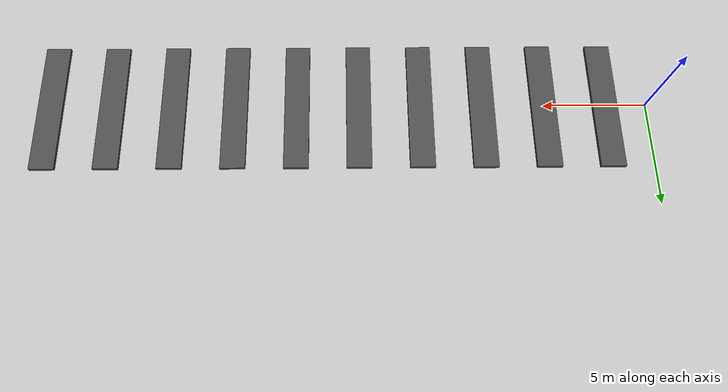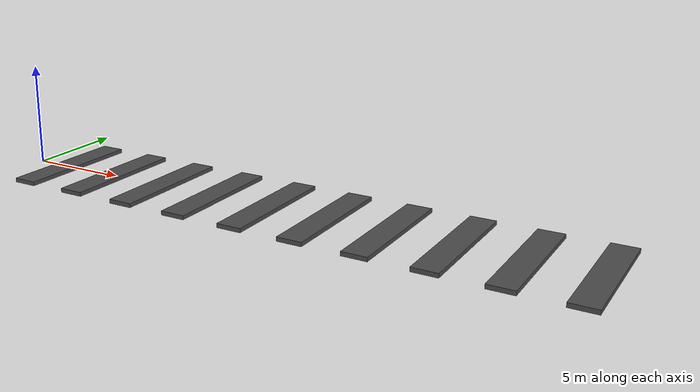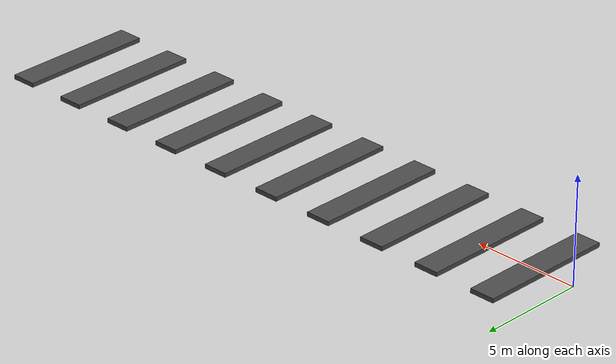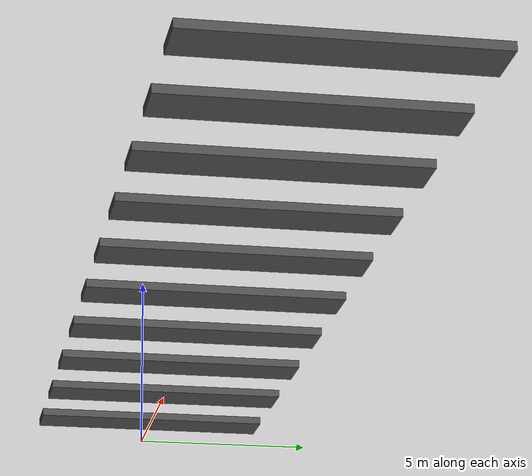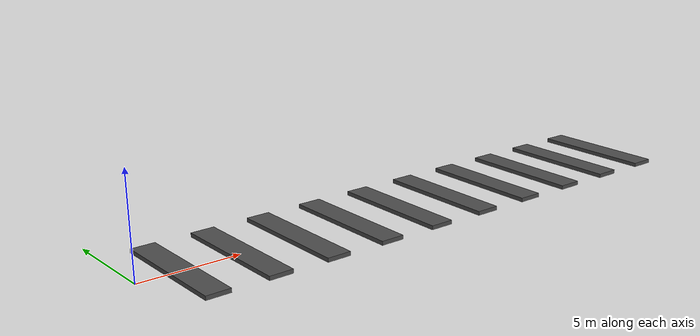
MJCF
<mujoco>
    <worldbody>
        <light diffuse="0.75 0.75 0.75" pos="2 0 5" dir="0 0 -1"/>
        <body pos="2 0 0.1">
            <geom type="box" size=".6 3.2 0.1" rgba="0.3 0.3 0.3 1"/>
        </body>
    </worldbody>

    <worldbody>
        <light diffuse="0.75 0.75 0.75" pos="5 0 5" dir="0 0 -1"/>
        <body pos="5 0 0.1">
            <geom type="box" size=".6 3.2 0.1" rgba="0.3 0.3 0.3 1"/>
        </body>
    </worldbody>

    <worldbody>
        <light diffuse="0.7 0.7 0.7" pos="8 0 5" dir="0 0 -1"/>
        <body pos="8 0 0.1">
            <geom type="box" size=".6 3.2 0.1" rgba="0.3 0.3 0.3 1"/>
        </body>
    </worldbody>

    <worldbody>
        <light diffuse="0.7 0.7 0.7" pos="11 0 5" dir="0 0 -1"/>
        <body pos="11 0 0.1">
            <geom type="box" size=".6 3.2 0.1" rgba="0.3 0.3 0.3 1"/>
        </body>
    </worldbody>

    <worldbody>
        <light diffuse="1 1 1" pos="14 0 5" dir="0 0 -1"/>
        <body pos="14 0 0.1">
            <geom type="box" size=".6 3.2 0.1" rgba="0.3 0.3 0.3 1"/>
        </body>
    </worldbody>

    <worldbody>
        <light diffuse="1 1 1" pos="17 0 5" dir="0 0 -1"/>
        <body pos="17 0 0.1">
            <geom type="box" size=".6 3.2 0.1" rgba="0.3 0.3 0.3 1"/>
        </body>
    </worldbody>

    <worldbody>
        <light diffuse="1 1 1" pos="20 0 5" dir="0 0 -1"/>
        <body pos="20 0 0.1">
            <geom type="box" size=".6 3.2 0.1" rgba="0.3 0.3 0.3 1"/>
        </body>
    </worldbody>

    <worldbody>
        <light diffuse="1 1 1" pos="23 0 5" dir="0 0 -1"/>
        <body pos="23 0 0.1">
            <geom type="box" size=".6 3.2 0.1" rgba="0.3 0.3 0.3 1"/>
        </body>
    </worldbody>

    <worldbody>
        <light diffuse="1 1 1" pos="26 0 5" dir="0 0 -1"/>
        <body pos="26 0 0.1">
            <geom type="box" size=".6 3.2 0.1" rgba="0.3 0.3 0.3 1"/>
        </body>
    </worldbody>

    <worldbody>
        <light diffuse="1 1 1" pos="29 0 5" dir="0 0 -1"/>
        <body pos="29 0 0.1">
            <geom type="box" size=".6 3.2 0.1" rgba="0.3 0.3 0.3 1"/>
        </body>
    </worldbody>
</mujoco>
